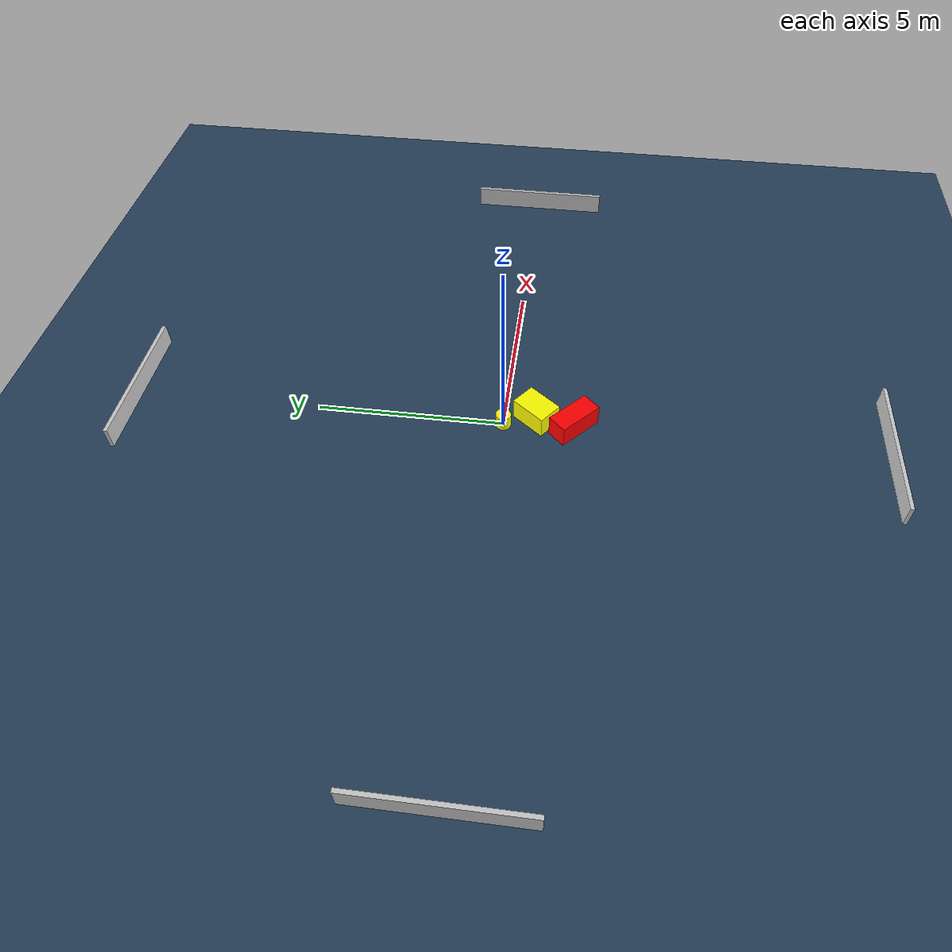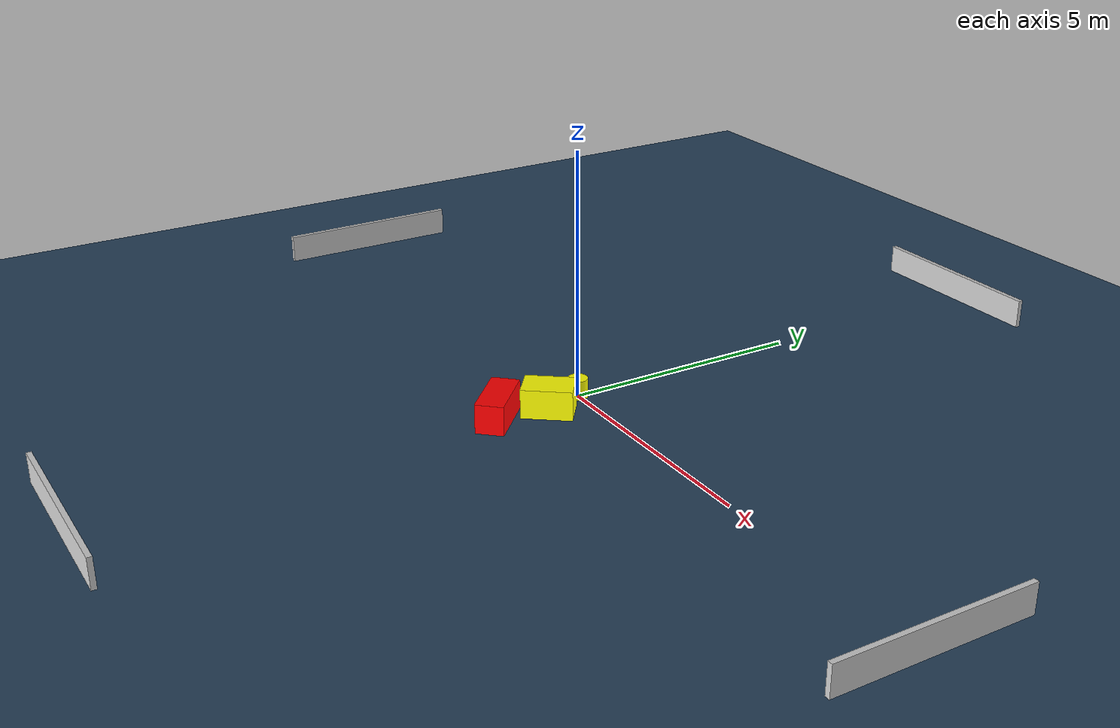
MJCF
<?xml version="1.0" ?>
<mujoco model="generated_environment">
  <option timestep="0.01" integrator="RK4" cone="elliptic"/>
  <default>
    <geom density="1"/>
  </default>
  <asset>
    <texture builtin="gradient" height="3072" name="skybox" rgb1="0.3 0.5 0.7" rgb2="0 0 0" type="skybox" width="512"/>
    <texture builtin="checker" height="300" name="groundplane" rgb1="0.2 0.3 0.4" rgb2="0.1 0.2 0.3" type="2d" width="300"/>
    <material name="groundplane" reflectance="0.2" texrepeat="5 5" texture="groundplane"/>
  </asset>
  <worldbody>
    <light dir="0 0 -1" directional="true" pos="0 0 1.5"/>
    <geom condim="3" friction="0.5 0.005 0.001" material="groundplane" name="floor" pos="0 0 0" size="0 0 0.05" type="plane"/>
    <body name="walls">
      <geom name="wall_1" condim="4" pos="-10.0 0.0 0.3" rgba="0.800000011920929 0.800000011920929 0.800000011920929 1.0" size="0.05 2.0 0.3" type="box"/>
      <geom name="wall_2" condim="4" pos="10.0 0.0 0.3" rgba="0.800000011920929 0.800000011920929 0.800000011920929 1.0" size="0.05 2.0 0.3" type="box"/>
      <geom name="wall_3" condim="4" pos="0.0 -10.0 0.3" rgba="0.800000011920929 0.800000011920929 0.800000011920929 1.0" size="2.0 0.05 0.3" type="box"/>
      <geom name="wall_4" condim="4" pos="0.0 10.0 0.3" rgba="0.800000011920929 0.800000011920929 0.800000011920929 1.0" size="2.0 0.05 0.3" type="box"/>
    </body>
    <body name="robot">
      <joint name="joint_x" type="slide" pos="0 0 0" axis="1 0 0"/>
      <joint name="joint_y" type="slide" pos="0 0 0" axis="0 1 0"/>
      <geom name="robot" type="cylinder" pos="0.0 0.0 0.2" size="0.2 0.2 0.0" mass="5.0" friction="1.0 0.005 0.0001" condim="4" rgba="1.0 1.0 0.0 1.0"/>
    </body>
    <body name="obstacle_1_movable">
      <geom name="obstacle_1_movable" condim="4" pos="0.30026435665943013 -0.8395665202419129 0.3" euler="0 0 142.36022968347504" friction="0.0 0.005 0.001" rgba="1.0 1.0 0.0 1.0" size="0.34605641846642166 0.5047556811601654 0.3" type="box" mass="0.1"/>
      <joint type="free"/>
    </body>
    <body name="obstacle_2_static">
      <geom name="obstacle_2_static" condim="4" pos="0.1131937515916779 -1.8494120273415444 0.3" euler="0 0 136.64706021801257" friction="0.0 0.005 0.001" rgba="1.0 0.0 0.0 1.0" size="0.6221109372219973 0.28206986353866054 0.3" type="box"/>
    </body>
  </worldbody>
  <actuator>
    <motor name="actuator_x" joint="joint_x" gear="1" ctrlrange="-1 1"/>
    <motor name="actuator_y" joint="joint_y" gear="1" ctrlrange="-1 1"/>
  </actuator>
</mujoco>
